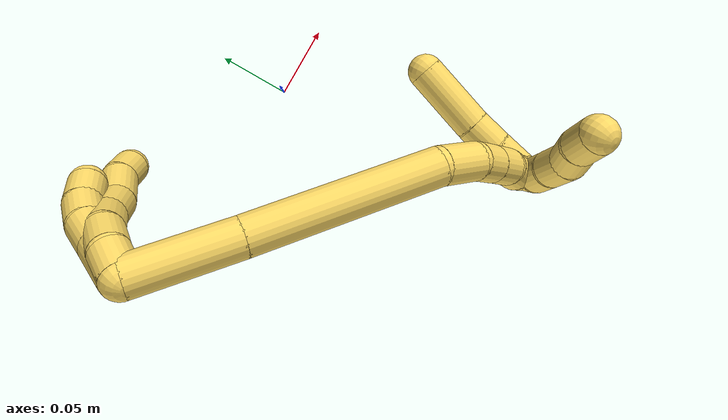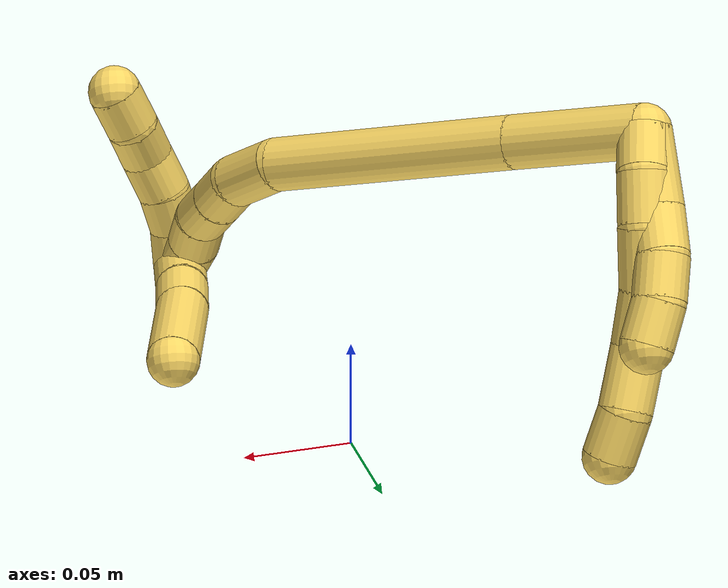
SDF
<sdf version="1.7">
 <world name="default">
  <model name="5">
   <static>0</static>
   <link name="5">
    <collision name="collision-cylinder-e_1_2_8">
     <pose>0.001493 0.000611 -0.010152 -3.08146 0.14573 -2.35992</pose>
     <geometry><cylinder><radius>0.0125</radius><length>0.020559</length></cylinder></geometry>
     <surface>
      <friction><ode><mu>1.16</mu><mu2>1.16</mu2><slip1>0</slip1><slip2>0</slip2></ode></friction>
      <contact><ode><kp>1e+06</kp><kd>1</kd><max_vel>0</max_vel><min_depth>0.001</min_depth></ode></contact>
     </surface>
    </collision>
    <visual name="visual-cylinder-e_1_2_8">
     <pose>0.001493 0.000611 -0.010152 -3.08146 0.14573 -2.35992</pose>
     <geometry><cylinder><radius>0.0125</radius><length>0.020559</length></cylinder></geometry>
     <material><ambient>1 0.858824 0.4 1</ambient></material>
    </visual>
    <collision name="collision-cylinder-e_2_8_9">
     <pose>0.002847 -0.000632 -0.032154 2.98635 -0.011564 -0.148405</pose>
     <geometry><cylinder><radius>0.0125</radius><length>0.023988</length></cylinder></geometry>
     <surface>
      <friction><ode><mu>1.16</mu><mu2>1.16</mu2><slip1>0</slip1><slip2>0</slip2></ode></friction>
      <contact><ode><kp>1e+06</kp><kd>1</kd><max_vel>0</max_vel><min_depth>0.001</min_depth></ode></contact>
     </surface>
    </collision>
    <visual name="visual-cylinder-e_2_8_9">
     <pose>0.002847 -0.000632 -0.032154 2.98635 -0.011564 -0.148405</pose>
     <geometry><cylinder><radius>0.0125</radius><length>0.023988</length></cylinder></geometry>
     <material><ambient>1 0.858824 0.4 1</ambient></material>
    </visual>
    <collision name="collision-cylinder-e_3_9_10">
     <pose>0.000501 -0.007836 -0.057026 2.7518 -0.155475 -0.751687</pose>
     <geometry><cylinder><radius>0.0125</radius><length>0.028503</length></cylinder></geometry>
     <surface>
      <friction><ode><mu>1.16</mu><mu2>1.16</mu2><slip1>0</slip1><slip2>0</slip2></ode></friction>
      <contact><ode><kp>1e+06</kp><kd>1</kd><max_vel>0</max_vel><min_depth>0.001</min_depth></ode></contact>
     </surface>
    </collision>
    <visual name="visual-cylinder-e_3_9_10">
     <pose>0.000501 -0.007836 -0.057026 2.7518 -0.155475 -0.751687</pose>
     <geometry><cylinder><radius>0.0125</radius><length>0.028503</length></cylinder></geometry>
     <material><ambient>1 0.858824 0.4 1</ambient></material>
    </visual>
    <collision name="collision-cylinder-e_4_10_11">
     <pose>-0.00211 -0.019792 -0.081288 2.61023 -0.031011 -0.113849</pose>
     <geometry><cylinder><radius>0.0125</radius><length>0.026084</length></cylinder></geometry>
     <surface>
      <friction><ode><mu>1.16</mu><mu2>1.16</mu2><slip1>0</slip1><slip2>0</slip2></ode></friction>
      <contact><ode><kp>1e+06</kp><kd>1</kd><max_vel>0</max_vel><min_depth>0.001</min_depth></ode></contact>
     </surface>
    </collision>
    <visual name="visual-cylinder-e_4_10_11">
     <pose>-0.00211 -0.019792 -0.081288 2.61023 -0.031011 -0.113849</pose>
     <geometry><cylinder><radius>0.0125</radius><length>0.026084</length></cylinder></geometry>
     <material><ambient>1 0.858824 0.4 1</ambient></material>
    </visual>
    <collision name="collision-cylinder-e_5_11_12">
     <pose>-0.000334 -0.03077 -0.106195 2.83197 0.150791 0.901591</pose>
     <geometry><cylinder><radius>0.0125</radius><length>0.029032</length></cylinder></geometry>
     <surface>
      <friction><ode><mu>1.16</mu><mu2>1.16</mu2><slip1>0</slip1><slip2>0</slip2></ode></friction>
      <contact><ode><kp>1e+06</kp><kd>1</kd><max_vel>0</max_vel><min_depth>0.001</min_depth></ode></contact>
     </surface>
    </collision>
    <visual name="visual-cylinder-e_5_11_12">
     <pose>-0.000334 -0.03077 -0.106195 2.83197 0.150791 0.901591</pose>
     <geometry><cylinder><radius>0.0125</radius><length>0.029032</length></cylinder></geometry>
     <material><ambient>1 0.858824 0.4 1</ambient></material>
    </visual>
    <collision name="collision-cylinder-e_6_12_6">
     <pose>0.00303 -0.04163 -0.128564 2.50088 0.108582 0.324703</pose>
     <geometry><cylinder><radius>0.0125</radius><length>0.021834</length></cylinder></geometry>
     <surface>
      <friction><ode><mu>1.16</mu><mu2>1.16</mu2><slip1>0</slip1><slip2>0</slip2></ode></friction>
      <contact><ode><kp>1e+06</kp><kd>1</kd><max_vel>0</max_vel><min_depth>0.001</min_depth></ode></contact>
     </surface>
    </collision>
    <visual name="visual-cylinder-e_6_12_6">
     <pose>0.00303 -0.04163 -0.128564 2.50088 0.108582 0.324703</pose>
     <geometry><cylinder><radius>0.0125</radius><length>0.021834</length></cylinder></geometry>
     <material><ambient>1 0.858824 0.4 1</ambient></material>
    </visual>
    <collision name="collision-cylinder-e_1_2_13">
     <pose>-0.00128 9.1e-05 -0.018554 -3.1367 -0.068863 2.99986</pose>
     <geometry><cylinder><radius>0.0125</radius><length>0.037197</length></cylinder></geometry>
     <surface>
      <friction><ode><mu>1.16</mu><mu2>1.16</mu2><slip1>0</slip1><slip2>0</slip2></ode></friction>
      <contact><ode><kp>1e+06</kp><kd>1</kd><max_vel>0</max_vel><min_depth>0.001</min_depth></ode></contact>
     </surface>
    </collision>
    <visual name="visual-cylinder-e_1_2_13">
     <pose>-0.00128 9.1e-05 -0.018554 -3.1367 -0.068863 2.99986</pose>
     <geometry><cylinder><radius>0.0125</radius><length>0.037197</length></cylinder></geometry>
     <material><ambient>1 0.858824 0.4 1</ambient></material>
    </visual>
    <collision name="collision-cylinder-e_2_13_14">
     <pose>-0.00218 0.001262 -0.048018 -3.04284 0.034577 -0.673145</pose>
     <geometry><cylinder><radius>0.0125</radius><length>0.021939</length></cylinder></geometry>
     <surface>
      <friction><ode><mu>1.16</mu><mu2>1.16</mu2><slip1>0</slip1><slip2>0</slip2></ode></friction>
      <contact><ode><kp>1e+06</kp><kd>1</kd><max_vel>0</max_vel><min_depth>0.001</min_depth></ode></contact>
     </surface>
    </collision>
    <visual name="visual-cylinder-e_2_13_14">
     <pose>-0.00218 0.001262 -0.048018 -3.04284 0.034577 -0.673145</pose>
     <geometry><cylinder><radius>0.0125</radius><length>0.021939</length></cylinder></geometry>
     <material><ambient>1 0.858824 0.4 1</ambient></material>
    </visual>
    <collision name="collision-cylinder-e_3_14_15">
     <pose>-0.000562 0.001109 -0.06904 3.02016 0.121048 1.56758</pose>
     <geometry><cylinder><radius>0.0125</radius><length>0.020526</length></cylinder></geometry>
     <surface>
      <friction><ode><mu>1.16</mu><mu2>1.16</mu2><slip1>0</slip1><slip2>0</slip2></ode></friction>
      <contact><ode><kp>1e+06</kp><kd>1</kd><max_vel>0</max_vel><min_depth>0.001</min_depth></ode></contact>
     </surface>
    </collision>
    <visual name="visual-cylinder-e_3_14_15">
     <pose>-0.000562 0.001109 -0.06904 3.02016 0.121048 1.56758</pose>
     <geometry><cylinder><radius>0.0125</radius><length>0.020526</length></cylinder></geometry>
     <material><ambient>1 0.858824 0.4 1</ambient></material>
    </visual>
    <collision name="collision-cylinder-e_4_15_5">
     <pose>0.002921 -0.003371 -0.088525 2.80815 0.222485 1.17199</pose>
     <geometry><cylinder><radius>0.0125</radius><length>0.020338</length></cylinder></geometry>
     <surface>
      <friction><ode><mu>1.16</mu><mu2>1.16</mu2><slip1>0</slip1><slip2>0</slip2></ode></friction>
      <contact><ode><kp>1e+06</kp><kd>1</kd><max_vel>0</max_vel><min_depth>0.001</min_depth></ode></contact>
     </surface>
    </collision>
    <visual name="visual-cylinder-e_4_15_5">
     <pose>0.002921 -0.003371 -0.088525 2.80815 0.222485 1.17199</pose>
     <geometry><cylinder><radius>0.0125</radius><length>0.020338</length></cylinder></geometry>
     <material><ambient>1 0.858824 0.4 1</ambient></material>
    </visual>
    <collision name="collision-cylinder-e_1_2_16">
     <pose>0.017445 -0.027981 0.004733 1.40325 0.551184 0.46915</pose>
     <geometry><cylinder><radius>0.0125</radius><length>0.066624</length></cylinder></geometry>
     <surface>
      <friction><ode><mu>1.16</mu><mu2>1.16</mu2><slip1>0</slip1><slip2>0</slip2></ode></friction>
      <contact><ode><kp>1e+06</kp><kd>1</kd><max_vel>0</max_vel><min_depth>0.001</min_depth></ode></contact>
     </surface>
    </collision>
    <visual name="visual-cylinder-e_1_2_16">
     <pose>0.017445 -0.027981 0.004733 1.40325 0.551184 0.46915</pose>
     <geometry><cylinder><radius>0.0125</radius><length>0.066624</length></cylinder></geometry>
     <material><ambient>1 0.858824 0.4 1</ambient></material>
    </visual>
    <collision name="collision-cylinder-e_2_16_17">
     <pose>0.068415 -0.107678 0.017593 1.41491 0.56958 0.490584</pose>
     <geometry><cylinder><radius>0.0125</radius><length>0.12433</length></cylinder></geometry>
     <surface>
      <friction><ode><mu>1.16</mu><mu2>1.16</mu2><slip1>0</slip1><slip2>0</slip2></ode></friction>
      <contact><ode><kp>1e+06</kp><kd>1</kd><max_vel>0</max_vel><min_depth>0.001</min_depth></ode></contact>
     </surface>
    </collision>
    <visual name="visual-cylinder-e_2_16_17">
     <pose>0.068415 -0.107678 0.017593 1.41491 0.56958 0.490584</pose>
     <geometry><cylinder><radius>0.0125</radius><length>0.12433</length></cylinder></geometry>
     <material><ambient>1 0.858824 0.4 1</ambient></material>
    </visual>
    <collision name="collision-cylinder-e_3_17_18">
     <pose>0.105734 -0.173387 0.025623 1.57779 0.264836 0.266674</pose>
     <geometry><cylinder><radius>0.0125</radius><length>0.028997</length></cylinder></geometry>
     <surface>
      <friction><ode><mu>1.16</mu><mu2>1.16</mu2><slip1>0</slip1><slip2>0</slip2></ode></friction>
      <contact><ode><kp>1e+06</kp><kd>1</kd><max_vel>0</max_vel><min_depth>0.001</min_depth></ode></contact>
     </surface>
    </collision>
    <visual name="visual-cylinder-e_3_17_18">
     <pose>0.105734 -0.173387 0.025623 1.57779 0.264836 0.266674</pose>
     <geometry><cylinder><radius>0.0125</radius><length>0.028997</length></cylinder></geometry>
     <material><ambient>1 0.858824 0.4 1</ambient></material>
    </visual>
    <collision name="collision-cylinder-e_4_18_19">
     <pose>0.109306 -0.197269 0.023919 1.73179 -0.022241 -0.026144</pose>
     <geometry><cylinder><radius>0.0125</radius><length>0.020042</length></cylinder></geometry>
     <surface>
      <friction><ode><mu>1.16</mu><mu2>1.16</mu2><slip1>0</slip1><slip2>0</slip2></ode></friction>
      <contact><ode><kp>1e+06</kp><kd>1</kd><max_vel>0</max_vel><min_depth>0.001</min_depth></ode></contact>
     </surface>
    </collision>
    <visual name="visual-cylinder-e_4_18_19">
     <pose>0.109306 -0.197269 0.023919 1.73179 -0.022241 -0.026144</pose>
     <geometry><cylinder><radius>0.0125</radius><length>0.020042</length></cylinder></geometry>
     <material><ambient>1 0.858824 0.4 1</ambient></material>
    </visual>
    <collision name="collision-cylinder-e_5_19_20">
     <pose>0.108789 -0.217056 0.020909 1.71167 -0.02942 -0.033885</pose>
     <geometry><cylinder><radius>0.0125</radius><length>0.020003</length></cylinder></geometry>
     <surface>
      <friction><ode><mu>1.16</mu><mu2>1.16</mu2><slip1>0</slip1><slip2>0</slip2></ode></friction>
      <contact><ode><kp>1e+06</kp><kd>1</kd><max_vel>0</max_vel><min_depth>0.001</min_depth></ode></contact>
     </surface>
    </collision>
    <visual name="visual-cylinder-e_5_19_20">
     <pose>0.108789 -0.217056 0.020909 1.71167 -0.02942 -0.033885</pose>
     <geometry><cylinder><radius>0.0125</radius><length>0.020003</length></cylinder></geometry>
     <material><ambient>1 0.858824 0.4 1</ambient></material>
    </visual>
    <collision name="collision-cylinder-e_6_20_21">
     <pose>0.106239 -0.236188 0.016397 1.89547 -0.227547 -0.315411</pose>
     <geometry><cylinder><radius>0.0125</radius><length>0.020002</length></cylinder></geometry>
     <surface>
      <friction><ode><mu>1.16</mu><mu2>1.16</mu2><slip1>0</slip1><slip2>0</slip2></ode></friction>
      <contact><ode><kp>1e+06</kp><kd>1</kd><max_vel>0</max_vel><min_depth>0.001</min_depth></ode></contact>
     </surface>
    </collision>
    <visual name="visual-cylinder-e_6_20_21">
     <pose>0.106239 -0.236188 0.016397 1.89547 -0.227547 -0.315411</pose>
     <geometry><cylinder><radius>0.0125</radius><length>0.020002</length></cylinder></geometry>
     <material><ambient>1 0.858824 0.4 1</ambient></material>
    </visual>
    <collision name="collision-cylinder-e_7_21_1">
     <pose>0.103434 -0.254883 0.010092 1.89665 -0.054879 -0.076453</pose>
     <geometry><cylinder><radius>0.0125</radius><length>0.020002</length></cylinder></geometry>
     <surface>
      <friction><ode><mu>1.16</mu><mu2>1.16</mu2><slip1>0</slip1><slip2>0</slip2></ode></friction>
      <contact><ode><kp>1e+06</kp><kd>1</kd><max_vel>0</max_vel><min_depth>0.001</min_depth></ode></contact>
     </surface>
    </collision>
    <visual name="visual-cylinder-e_7_21_1">
     <pose>0.103434 -0.254883 0.010092 1.89665 -0.054879 -0.076453</pose>
     <geometry><cylinder><radius>0.0125</radius><length>0.020002</length></cylinder></geometry>
     <material><ambient>1 0.858824 0.4 1</ambient></material>
    </visual>
    <collision name="collision-cylinder-e_1_1_22">
     <pose>0.10556 -0.25949 0.01522 -0.527831 0.270778 -0.073586</pose>
     <geometry><cylinder><radius>0.0125</radius><length>0.02</length></cylinder></geometry>
     <surface>
      <friction><ode><mu>1.16</mu><mu2>1.16</mu2><slip1>0</slip1><slip2>0</slip2></ode></friction>
      <contact><ode><kp>1e+06</kp><kd>1</kd><max_vel>0</max_vel><min_depth>0.001</min_depth></ode></contact>
     </surface>
    </collision>
    <visual name="visual-cylinder-e_1_1_22">
     <pose>0.10556 -0.25949 0.01522 -0.527831 0.270778 -0.073586</pose>
     <geometry><cylinder><radius>0.0125</radius><length>0.02</length></cylinder></geometry>
     <material><ambient>1 0.858824 0.4 1</ambient></material>
    </visual>
    <collision name="collision-cylinder-e_2_22_23">
     <pose>0.113226 -0.2496 0.030595 -0.620389 0.522567 -0.171006</pose>
     <geometry><cylinder><radius>0.0125</radius><length>0.02</length></cylinder></geometry>
     <surface>
      <friction><ode><mu>1.16</mu><mu2>1.16</mu2><slip1>0</slip1><slip2>0</slip2></ode></friction>
      <contact><ode><kp>1e+06</kp><kd>1</kd><max_vel>0</max_vel><min_depth>0.001</min_depth></ode></contact>
     </surface>
    </collision>
    <visual name="visual-cylinder-e_2_22_23">
     <pose>0.113226 -0.2496 0.030595 -0.620389 0.522567 -0.171006</pose>
     <geometry><cylinder><radius>0.0125</radius><length>0.02</length></cylinder></geometry>
     <material><ambient>1 0.858824 0.4 1</ambient></material>
    </visual>
    <collision name="collision-cylinder-e_3_23_24">
     <pose>0.12408 -0.240816 0.044828 -0.480682 0.626508 -0.158439</pose>
     <geometry><cylinder><radius>0.0125</radius><length>0.02</length></cylinder></geometry>
     <surface>
      <friction><ode><mu>1.16</mu><mu2>1.16</mu2><slip1>0</slip1><slip2>0</slip2></ode></friction>
      <contact><ode><kp>1e+06</kp><kd>1</kd><max_vel>0</max_vel><min_depth>0.001</min_depth></ode></contact>
     </surface>
    </collision>
    <visual name="visual-cylinder-e_3_23_24">
     <pose>0.12408 -0.240816 0.044828 -0.480682 0.626508 -0.158439</pose>
     <geometry><cylinder><radius>0.0125</radius><length>0.02</length></cylinder></geometry>
     <material><ambient>1 0.858824 0.4 1</ambient></material>
    </visual>
    <collision name="collision-cylinder-e_4_24_25">
     <pose>0.136148 -0.230948 0.056912 -0.895825 0.66932 -0.331108</pose>
     <geometry><cylinder><radius>0.0125</radius><length>0.02</length></cylinder></geometry>
     <surface>
      <friction><ode><mu>1.16</mu><mu2>1.16</mu2><slip1>0</slip1><slip2>0</slip2></ode></friction>
      <contact><ode><kp>1e+06</kp><kd>1</kd><max_vel>0</max_vel><min_depth>0.001</min_depth></ode></contact>
     </surface>
    </collision>
    <visual name="visual-cylinder-e_4_24_25">
     <pose>0.136148 -0.230948 0.056912 -0.895825 0.66932 -0.331108</pose>
     <geometry><cylinder><radius>0.0125</radius><length>0.02</length></cylinder></geometry>
     <material><ambient>1 0.858824 0.4 1</ambient></material>
    </visual>
    <collision name="collision-cylinder-e_5_25_4">
     <pose>0.148529 -0.220446 0.068344 -0.590592 0.665778 -0.20958</pose>
     <geometry><cylinder><radius>0.0125</radius><length>0.02</length></cylinder></geometry>
     <surface>
      <friction><ode><mu>1.16</mu><mu2>1.16</mu2><slip1>0</slip1><slip2>0</slip2></ode></friction>
      <contact><ode><kp>1e+06</kp><kd>1</kd><max_vel>0</max_vel><min_depth>0.001</min_depth></ode></contact>
     </surface>
    </collision>
    <visual name="visual-cylinder-e_5_25_4">
     <pose>0.148529 -0.220446 0.068344 -0.590592 0.665778 -0.20958</pose>
     <geometry><cylinder><radius>0.0125</radius><length>0.02</length></cylinder></geometry>
     <material><ambient>1 0.858824 0.4 1</ambient></material>
    </visual>
    <collision name="collision-cylinder-e_1_1_26">
     <pose>0.107674 -0.254285 -0.001795 -2.28338 0.345743 -0.729153</pose>
     <geometry><cylinder><radius>0.0125</radius><length>0.028258</length></cylinder></geometry>
     <surface>
      <friction><ode><mu>1.16</mu><mu2>1.16</mu2><slip1>0</slip1><slip2>0</slip2></ode></friction>
      <contact><ode><kp>1e+06</kp><kd>1</kd><max_vel>0</max_vel><min_depth>0.001</min_depth></ode></contact>
     </surface>
    </collision>
    <visual name="visual-cylinder-e_1_1_26">
     <pose>0.107674 -0.254285 -0.001795 -2.28338 0.345743 -0.729153</pose>
     <geometry><cylinder><radius>0.0125</radius><length>0.028258</length></cylinder></geometry>
     <material><ambient>1 0.858824 0.4 1</ambient></material>
    </visual>
    <collision name="collision-cylinder-e_2_26_27">
     <pose>0.116209 -0.23731 -0.017784 -2.38307 0.356667 -0.84945</pose>
     <geometry><cylinder><radius>0.0125</radius><length>0.021461</length></cylinder></geometry>
     <surface>
      <friction><ode><mu>1.16</mu><mu2>1.16</mu2><slip1>0</slip1><slip2>0</slip2></ode></friction>
      <contact><ode><kp>1e+06</kp><kd>1</kd><max_vel>0</max_vel><min_depth>0.001</min_depth></ode></contact>
     </surface>
    </collision>
    <visual name="visual-cylinder-e_2_26_27">
     <pose>0.116209 -0.23731 -0.017784 -2.38307 0.356667 -0.84945</pose>
     <geometry><cylinder><radius>0.0125</radius><length>0.021461</length></cylinder></geometry>
     <material><ambient>1 0.858824 0.4 1</ambient></material>
    </visual>
    <collision name="collision-cylinder-e_3_27_3">
     <pose>0.130629 -0.215302 -0.042123 -2.41676 0.438465 -1.06256</pose>
     <geometry><cylinder><radius>0.0125</radius><length>0.050281</length></cylinder></geometry>
     <surface>
      <friction><ode><mu>1.16</mu><mu2>1.16</mu2><slip1>0</slip1><slip2>0</slip2></ode></friction>
      <contact><ode><kp>1e+06</kp><kd>1</kd><max_vel>0</max_vel><min_depth>0.001</min_depth></ode></contact>
     </surface>
    </collision>
    <visual name="visual-cylinder-e_3_27_3">
     <pose>0.130629 -0.215302 -0.042123 -2.41676 0.438465 -1.06256</pose>
     <geometry><cylinder><radius>0.0125</radius><length>0.050281</length></cylinder></geometry>
     <material><ambient>1 0.858824 0.4 1</ambient></material>
    </visual>
    <collision name="collision-sphere-3">
     <pose>0.141302 -0.20021 -0.059163 0 -0 0</pose>
     <geometry><sphere><radius>0.0125</radius></sphere></geometry>
     <surface>
      <friction><ode><mu>1.16</mu><mu2>1.16</mu2><slip1>0</slip1><slip2>0</slip2></ode></friction>
      <contact><ode><kp>1e+06</kp><kd>1</kd><max_vel>0</max_vel><min_depth>0.001</min_depth></ode></contact>
     </surface>
    </collision>
    <visual name="visual-sphere-3">
     <pose>0.141302 -0.20021 -0.059163 0 -0 0</pose>
     <geometry><sphere><radius>0.0125</radius></sphere></geometry>
     <material><ambient>1 0.858824 0.4 1</ambient></material>
    </visual>
    <collision name="collision-sphere-27">
     <pose>0.119955 -0.230394 -0.025083 0 -0 0</pose>
     <geometry><sphere><radius>0.0125</radius></sphere></geometry>
     <surface>
      <friction><ode><mu>1.16</mu><mu2>1.16</mu2><slip1>0</slip1><slip2>0</slip2></ode></friction>
      <contact><ode><kp>1e+06</kp><kd>1</kd><max_vel>0</max_vel><min_depth>0.001</min_depth></ode></contact>
     </surface>
    </collision>
    <visual name="visual-sphere-27">
     <pose>0.119955 -0.230394 -0.025083 0 -0 0</pose>
     <geometry><sphere><radius>0.0125</radius></sphere></geometry>
     <material><ambient>1 0.858824 0.4 1</ambient></material>
    </visual>
    <collision name="collision-sphere-26">
     <pose>0.112462 -0.244226 -0.010486 0 -0 0</pose>
     <geometry><sphere><radius>0.0125</radius></sphere></geometry>
     <surface>
      <friction><ode><mu>1.16</mu><mu2>1.16</mu2><slip1>0</slip1><slip2>0</slip2></ode></friction>
      <contact><ode><kp>1e+06</kp><kd>1</kd><max_vel>0</max_vel><min_depth>0.001</min_depth></ode></contact>
     </surface>
    </collision>
    <visual name="visual-sphere-26">
     <pose>0.112462 -0.244226 -0.010486 0 -0 0</pose>
     <geometry><sphere><radius>0.0125</radius></sphere></geometry>
     <material><ambient>1 0.858824 0.4 1</ambient></material>
    </visual>
    <collision name="collision-sphere-4">
     <pose>0.154706 -0.216066 0.074877 0 -0 0</pose>
     <geometry><sphere><radius>0.0125</radius></sphere></geometry>
     <surface>
      <friction><ode><mu>1.16</mu><mu2>1.16</mu2><slip1>0</slip1><slip2>0</slip2></ode></friction>
      <contact><ode><kp>1e+06</kp><kd>1</kd><max_vel>0</max_vel><min_depth>0.001</min_depth></ode></contact>
     </surface>
    </collision>
    <visual name="visual-sphere-4">
     <pose>0.154706 -0.216066 0.074877 0 -0 0</pose>
     <geometry><sphere><radius>0.0125</radius></sphere></geometry>
     <material><ambient>1 0.858824 0.4 1</ambient></material>
    </visual>
    <collision name="collision-sphere-25">
     <pose>0.142353 -0.224825 0.061812 0 -0 0</pose>
     <geometry><sphere><radius>0.0125</radius></sphere></geometry>
     <surface>
      <friction><ode><mu>1.16</mu><mu2>1.16</mu2><slip1>0</slip1><slip2>0</slip2></ode></friction>
      <contact><ode><kp>1e+06</kp><kd>1</kd><max_vel>0</max_vel><min_depth>0.001</min_depth></ode></contact>
     </surface>
    </collision>
    <visual name="visual-sphere-25">
     <pose>0.142353 -0.224825 0.061812 0 -0 0</pose>
     <geometry><sphere><radius>0.0125</radius></sphere></geometry>
     <material><ambient>1 0.858824 0.4 1</ambient></material>
    </visual>
    <collision name="collision-sphere-24">
     <pose>0.129944 -0.237071 0.052011 0 -0 0</pose>
     <geometry><sphere><radius>0.0125</radius></sphere></geometry>
     <surface>
      <friction><ode><mu>1.16</mu><mu2>1.16</mu2><slip1>0</slip1><slip2>0</slip2></ode></friction>
      <contact><ode><kp>1e+06</kp><kd>1</kd><max_vel>0</max_vel><min_depth>0.001</min_depth></ode></contact>
     </surface>
    </collision>
    <visual name="visual-sphere-24">
     <pose>0.129944 -0.237071 0.052011 0 -0 0</pose>
     <geometry><sphere><radius>0.0125</radius></sphere></geometry>
     <material><ambient>1 0.858824 0.4 1</ambient></material>
    </visual>
    <collision name="collision-sphere-23">
     <pose>0.118217 -0.244562 0.037645 0 -0 0</pose>
     <geometry><sphere><radius>0.0125</radius></sphere></geometry>
     <surface>
      <friction><ode><mu>1.16</mu><mu2>1.16</mu2><slip1>0</slip1><slip2>0</slip2></ode></friction>
      <contact><ode><kp>1e+06</kp><kd>1</kd><max_vel>0</max_vel><min_depth>0.001</min_depth></ode></contact>
     </surface>
    </collision>
    <visual name="visual-sphere-23">
     <pose>0.118217 -0.244562 0.037645 0 -0 0</pose>
     <geometry><sphere><radius>0.0125</radius></sphere></geometry>
     <material><ambient>1 0.858824 0.4 1</ambient></material>
    </visual>
    <collision name="collision-sphere-22">
     <pose>0.108235 -0.254637 0.023544 0 -0 0</pose>
     <geometry><sphere><radius>0.0125</radius></sphere></geometry>
     <surface>
      <friction><ode><mu>1.16</mu><mu2>1.16</mu2><slip1>0</slip1><slip2>0</slip2></ode></friction>
      <contact><ode><kp>1e+06</kp><kd>1</kd><max_vel>0</max_vel><min_depth>0.001</min_depth></ode></contact>
     </surface>
    </collision>
    <visual name="visual-sphere-22">
     <pose>0.108235 -0.254637 0.023544 0 -0 0</pose>
     <geometry><sphere><radius>0.0125</radius></sphere></geometry>
     <material><ambient>1 0.858824 0.4 1</ambient></material>
    </visual>
    <collision name="collision-sphere-1">
     <pose>0.102886 -0.264343 0.006896 0 -0 0</pose>
     <geometry><sphere><radius>0.0125</radius></sphere></geometry>
     <surface>
      <friction><ode><mu>1.16</mu><mu2>1.16</mu2><slip1>0</slip1><slip2>0</slip2></ode></friction>
      <contact><ode><kp>1e+06</kp><kd>1</kd><max_vel>0</max_vel><min_depth>0.001</min_depth></ode></contact>
     </surface>
    </collision>
    <visual name="visual-sphere-1">
     <pose>0.102886 -0.264343 0.006896 0 -0 0</pose>
     <geometry><sphere><radius>0.0125</radius></sphere></geometry>
     <material><ambient>1 0.858824 0.4 1</ambient></material>
    </visual>
    <collision name="collision-sphere-21">
     <pose>0.103983 -0.245422 0.013289 0 -0 0</pose>
     <geometry><sphere><radius>0.0125</radius></sphere></geometry>
     <surface>
      <friction><ode><mu>1.16</mu><mu2>1.16</mu2><slip1>0</slip1><slip2>0</slip2></ode></friction>
      <contact><ode><kp>1e+06</kp><kd>1</kd><max_vel>0</max_vel><min_depth>0.001</min_depth></ode></contact>
     </surface>
    </collision>
    <visual name="visual-sphere-21">
     <pose>0.103983 -0.245422 0.013289 0 -0 0</pose>
     <geometry><sphere><radius>0.0125</radius></sphere></geometry>
     <material><ambient>1 0.858824 0.4 1</ambient></material>
    </visual>
    <collision name="collision-sphere-12">
     <pose>0.001847 -0.035142 -0.119863 0 -0 0</pose>
     <geometry><sphere><radius>0.0125</radius></sphere></geometry>
     <surface>
      <friction><ode><mu>1.16</mu><mu2>1.16</mu2><slip1>0</slip1><slip2>0</slip2></ode></friction>
      <contact><ode><kp>1e+06</kp><kd>1</kd><max_vel>0</max_vel><min_depth>0.001</min_depth></ode></contact>
     </surface>
    </collision>
    <visual name="visual-sphere-12">
     <pose>0.001847 -0.035142 -0.119863 0 -0 0</pose>
     <geometry><sphere><radius>0.0125</radius></sphere></geometry>
     <material><ambient>1 0.858824 0.4 1</ambient></material>
    </visual>
    <collision name="collision-sphere-11">
     <pose>-0.002514 -0.026397 -0.092526 0 -0 0</pose>
     <geometry><sphere><radius>0.0125</radius></sphere></geometry>
     <surface>
      <friction><ode><mu>1.16</mu><mu2>1.16</mu2><slip1>0</slip1><slip2>0</slip2></ode></friction>
      <contact><ode><kp>1e+06</kp><kd>1</kd><max_vel>0</max_vel><min_depth>0.001</min_depth></ode></contact>
     </surface>
    </collision>
    <visual name="visual-sphere-11">
     <pose>-0.002514 -0.026397 -0.092526 0 -0 0</pose>
     <geometry><sphere><radius>0.0125</radius></sphere></geometry>
     <material><ambient>1 0.858824 0.4 1</ambient></material>
    </visual>
    <collision name="collision-sphere-10">
     <pose>-0.001705 -0.013186 -0.070049 0 -0 0</pose>
     <geometry><sphere><radius>0.0125</radius></sphere></geometry>
     <surface>
      <friction><ode><mu>1.16</mu><mu2>1.16</mu2><slip1>0</slip1><slip2>0</slip2></ode></friction>
      <contact><ode><kp>1e+06</kp><kd>1</kd><max_vel>0</max_vel><min_depth>0.001</min_depth></ode></contact>
     </surface>
    </collision>
    <visual name="visual-sphere-10">
     <pose>-0.001705 -0.013186 -0.070049 0 -0 0</pose>
     <geometry><sphere><radius>0.0125</radius></sphere></geometry>
     <material><ambient>1 0.858824 0.4 1</ambient></material>
    </visual>
    <collision name="collision-sphere-9">
     <pose>0.002708 -0.002486 -0.044003 0 -0 0</pose>
     <geometry><sphere><radius>0.0125</radius></sphere></geometry>
     <surface>
      <friction><ode><mu>1.16</mu><mu2>1.16</mu2><slip1>0</slip1><slip2>0</slip2></ode></friction>
      <contact><ode><kp>1e+06</kp><kd>1</kd><max_vel>0</max_vel><min_depth>0.001</min_depth></ode></contact>
     </surface>
    </collision>
    <visual name="visual-sphere-9">
     <pose>0.002708 -0.002486 -0.044003 0 -0 0</pose>
     <geometry><sphere><radius>0.0125</radius></sphere></geometry>
     <material><ambient>1 0.858824 0.4 1</ambient></material>
    </visual>
    <collision name="collision-sphere-2">
     <geometry><sphere><radius>0.0125</radius></sphere></geometry>
     <surface>
      <friction><ode><mu>1.16</mu><mu2>1.16</mu2><slip1>0</slip1><slip2>0</slip2></ode></friction>
      <contact><ode><kp>1e+06</kp><kd>1</kd><max_vel>0</max_vel><min_depth>0.001</min_depth></ode></contact>
     </surface>
    </collision>
    <visual name="visual-sphere-2">
     <geometry><sphere><radius>0.0125</radius></sphere></geometry>
     <material><ambient>1 0.858824 0.4 1</ambient></material>
    </visual>
    <collision name="collision-sphere-19">
     <pose>0.109083 -0.207158 0.022313 0 -0 0</pose>
     <geometry><sphere><radius>0.0125</radius></sphere></geometry>
     <surface>
      <friction><ode><mu>1.16</mu><mu2>1.16</mu2><slip1>0</slip1><slip2>0</slip2></ode></friction>
      <contact><ode><kp>1e+06</kp><kd>1</kd><max_vel>0</max_vel><min_depth>0.001</min_depth></ode></contact>
     </surface>
    </collision>
    <visual name="visual-sphere-19">
     <pose>0.109083 -0.207158 0.022313 0 -0 0</pose>
     <geometry><sphere><radius>0.0125</radius></sphere></geometry>
     <material><ambient>1 0.858824 0.4 1</ambient></material>
    </visual>
    <collision name="collision-sphere-8">
     <pose>0.002986 0.001222 -0.020305 0 -0 0</pose>
     <geometry><sphere><radius>0.0125</radius></sphere></geometry>
     <surface>
      <friction><ode><mu>1.16</mu><mu2>1.16</mu2><slip1>0</slip1><slip2>0</slip2></ode></friction>
      <contact><ode><kp>1e+06</kp><kd>1</kd><max_vel>0</max_vel><min_depth>0.001</min_depth></ode></contact>
     </surface>
    </collision>
    <visual name="visual-sphere-8">
     <pose>0.002986 0.001222 -0.020305 0 -0 0</pose>
     <geometry><sphere><radius>0.0125</radius></sphere></geometry>
     <material><ambient>1 0.858824 0.4 1</ambient></material>
    </visual>
    <collision name="collision-sphere-6">
     <pose>0.004213 -0.048117 -0.137264 0 -0 0</pose>
     <geometry><sphere><radius>0.0125</radius></sphere></geometry>
     <surface>
      <friction><ode><mu>1.16</mu><mu2>1.16</mu2><slip1>0</slip1><slip2>0</slip2></ode></friction>
      <contact><ode><kp>1e+06</kp><kd>1</kd><max_vel>0</max_vel><min_depth>0.001</min_depth></ode></contact>
     </surface>
    </collision>
    <visual name="visual-sphere-6">
     <pose>0.004213 -0.048117 -0.137264 0 -0 0</pose>
     <geometry><sphere><radius>0.0125</radius></sphere></geometry>
     <material><ambient>1 0.858824 0.4 1</ambient></material>
    </visual>
    <collision name="collision-sphere-13">
     <pose>-0.002559 0.000181 -0.037108 0 -0 0</pose>
     <geometry><sphere><radius>0.0125</radius></sphere></geometry>
     <surface>
      <friction><ode><mu>1.16</mu><mu2>1.16</mu2><slip1>0</slip1><slip2>0</slip2></ode></friction>
      <contact><ode><kp>1e+06</kp><kd>1</kd><max_vel>0</max_vel><min_depth>0.001</min_depth></ode></contact>
     </surface>
    </collision>
    <visual name="visual-sphere-13">
     <pose>-0.002559 0.000181 -0.037108 0 -0 0</pose>
     <geometry><sphere><radius>0.0125</radius></sphere></geometry>
     <material><ambient>1 0.858824 0.4 1</ambient></material>
    </visual>
    <collision name="collision-sphere-14">
     <pose>-0.001801 0.002343 -0.058927 0 -0 0</pose>
     <geometry><sphere><radius>0.0125</radius></sphere></geometry>
     <surface>
      <friction><ode><mu>1.16</mu><mu2>1.16</mu2><slip1>0</slip1><slip2>0</slip2></ode></friction>
      <contact><ode><kp>1e+06</kp><kd>1</kd><max_vel>0</max_vel><min_depth>0.001</min_depth></ode></contact>
     </surface>
    </collision>
    <visual name="visual-sphere-14">
     <pose>-0.001801 0.002343 -0.058927 0 -0 0</pose>
     <geometry><sphere><radius>0.0125</radius></sphere></geometry>
     <material><ambient>1 0.858824 0.4 1</ambient></material>
    </visual>
    <collision name="collision-sphere-15">
     <pose>0.000678 -0.000125 -0.079153 0 -0 0</pose>
     <geometry><sphere><radius>0.0125</radius></sphere></geometry>
     <surface>
      <friction><ode><mu>1.16</mu><mu2>1.16</mu2><slip1>0</slip1><slip2>0</slip2></ode></friction>
      <contact><ode><kp>1e+06</kp><kd>1</kd><max_vel>0</max_vel><min_depth>0.001</min_depth></ode></contact>
     </surface>
    </collision>
    <visual name="visual-sphere-15">
     <pose>0.000678 -0.000125 -0.079153 0 -0 0</pose>
     <geometry><sphere><radius>0.0125</radius></sphere></geometry>
     <material><ambient>1 0.858824 0.4 1</ambient></material>
    </visual>
    <collision name="collision-sphere-5">
     <pose>0.005165 -0.006618 -0.097897 0 -0 0</pose>
     <geometry><sphere><radius>0.0125</radius></sphere></geometry>
     <surface>
      <friction><ode><mu>1.16</mu><mu2>1.16</mu2><slip1>0</slip1><slip2>0</slip2></ode></friction>
      <contact><ode><kp>1e+06</kp><kd>1</kd><max_vel>0</max_vel><min_depth>0.001</min_depth></ode></contact>
     </surface>
    </collision>
    <visual name="visual-sphere-5">
     <pose>0.005165 -0.006618 -0.097897 0 -0 0</pose>
     <geometry><sphere><radius>0.0125</radius></sphere></geometry>
     <material><ambient>1 0.858824 0.4 1</ambient></material>
    </visual>
    <collision name="collision-sphere-16">
     <pose>0.034891 -0.055962 0.009465 0 -0 0</pose>
     <geometry><sphere><radius>0.0125</radius></sphere></geometry>
     <surface>
      <friction><ode><mu>1.16</mu><mu2>1.16</mu2><slip1>0</slip1><slip2>0</slip2></ode></friction>
      <contact><ode><kp>1e+06</kp><kd>1</kd><max_vel>0</max_vel><min_depth>0.001</min_depth></ode></contact>
     </surface>
    </collision>
    <visual name="visual-sphere-16">
     <pose>0.034891 -0.055962 0.009465 0 -0 0</pose>
     <geometry><sphere><radius>0.0125</radius></sphere></geometry>
     <material><ambient>1 0.858824 0.4 1</ambient></material>
    </visual>
    <collision name="collision-sphere-17">
     <pose>0.101939 -0.159394 0.02572 0 -0 0</pose>
     <geometry><sphere><radius>0.0125</radius></sphere></geometry>
     <surface>
      <friction><ode><mu>1.16</mu><mu2>1.16</mu2><slip1>0</slip1><slip2>0</slip2></ode></friction>
      <contact><ode><kp>1e+06</kp><kd>1</kd><max_vel>0</max_vel><min_depth>0.001</min_depth></ode></contact>
     </surface>
    </collision>
    <visual name="visual-sphere-17">
     <pose>0.101939 -0.159394 0.02572 0 -0 0</pose>
     <geometry><sphere><radius>0.0125</radius></sphere></geometry>
     <material><ambient>1 0.858824 0.4 1</ambient></material>
    </visual>
    <collision name="collision-sphere-18">
     <pose>0.109529 -0.18738 0.025525 0 -0 0</pose>
     <geometry><sphere><radius>0.0125</radius></sphere></geometry>
     <surface>
      <friction><ode><mu>1.16</mu><mu2>1.16</mu2><slip1>0</slip1><slip2>0</slip2></ode></friction>
      <contact><ode><kp>1e+06</kp><kd>1</kd><max_vel>0</max_vel><min_depth>0.001</min_depth></ode></contact>
     </surface>
    </collision>
    <visual name="visual-sphere-18">
     <pose>0.109529 -0.18738 0.025525 0 -0 0</pose>
     <geometry><sphere><radius>0.0125</radius></sphere></geometry>
     <material><ambient>1 0.858824 0.4 1</ambient></material>
    </visual>
    <collision name="collision-sphere-20">
     <pose>0.108495 -0.226954 0.019505 0 -0 0</pose>
     <geometry><sphere><radius>0.0125</radius></sphere></geometry>
     <surface>
      <friction><ode><mu>1.16</mu><mu2>1.16</mu2><slip1>0</slip1><slip2>0</slip2></ode></friction>
      <contact><ode><kp>1e+06</kp><kd>1</kd><max_vel>0</max_vel><min_depth>0.001</min_depth></ode></contact>
     </surface>
    </collision>
    <visual name="visual-sphere-20">
     <pose>0.108495 -0.226954 0.019505 0 -0 0</pose>
     <geometry><sphere><radius>0.0125</radius></sphere></geometry>
     <material><ambient>1 0.858824 0.4 1</ambient></material>
    </visual>
    <inertial>
     <pose>0.061357 -0.117449 -0.012182 0 -0 0</pose>
     <mass>0.75</mass>
     <inertia><ixx>0.000252</ixx><ixy>0</ixy><ixz>0</ixz><iyy>0.00012</iyy><iyz>0</iyz><izz>2.7e-05</izz></inertia>
    </inertial>
   </link>
   <pose>-0.132686 0.011581 0.143034 0.693551 -0.261174 0.127871</pose>
  </model>
 </world>
</sdf>
